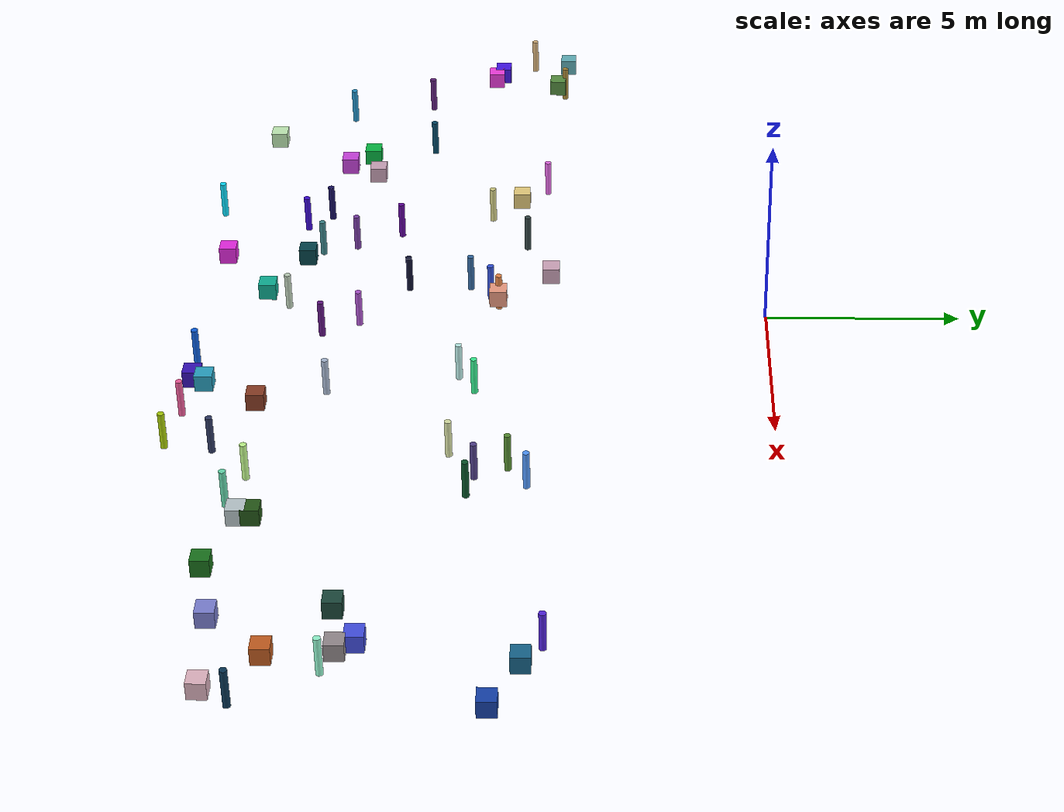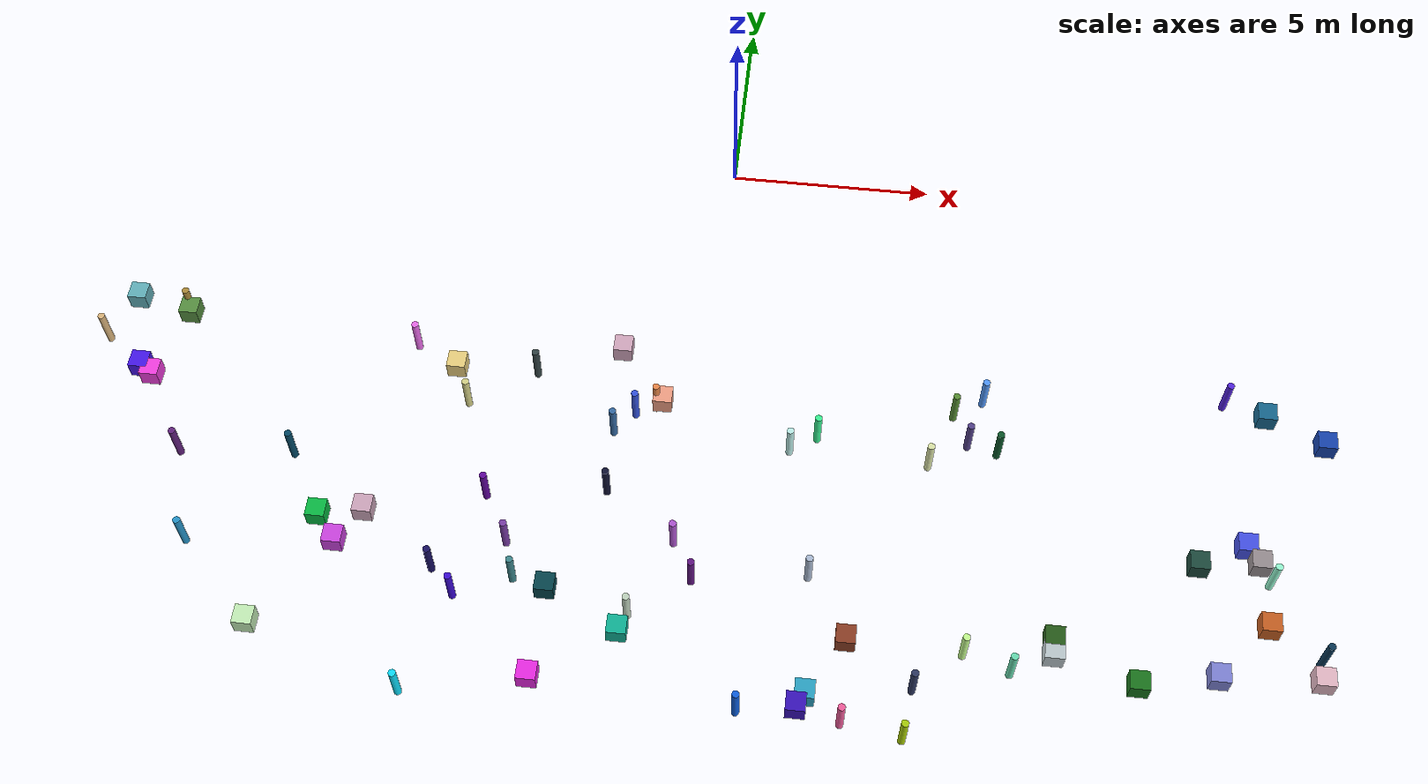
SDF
<sdf version="1.7">
 <world name="warehouse">
  <model name="ground_plane">
   <static>true</static>
   <link name="link">
    <collision name="collision">
     <geometry><plane><normal>0.0 0.0 1</normal><size>1 1</size></plane></geometry>
    </collision>
   </link>
  </model>
  <model name="unit_box_0">
   <static>true</static>
   <pose>13.37 -5.86 0 0 0 0</pose>
   <link name="link">
    <collision name="collision">
     <geometry><box><size>0.450000 0.450000 0.450000</size></box></geometry>
    </collision>
    <visual name="visual">
     <geometry><box><size>0.450000 0.450000 0.450000</size></box></geometry>
     <material>
      <ambient>0.08826428566511146 0.4038599944238248 0.5587865503291078 1</ambient>
      <diffuse>0.08826428566511146 0.4038599944238248 0.5587865503291078 1</diffuse>
      <script><uri>file://media/materials/scripts/gazebo.material</uri><name>Gazebo/RandomColor0</name></script>
     </material>
    </visual>
   </link>
  </model>
  <model name="unit_cylinder_2">
   <static>true</static>
   <pose>5.97 -6.44 0 0 0 0</pose>
   <link name="link">
    <collision name="collision">
     <geometry><cylinder><radius>0.085000</radius><length>1.000000</length></cylinder></geometry>
    </collision>
    <visual name="visual">
     <geometry><cylinder><radius>0.085000</radius><length>1.000000</length></cylinder></geometry>
     <material>
      <ambient>0.3449785465370162 0.561180177442619 0.20164393201053876 1</ambient>
      <diffuse>0.3449785465370162 0.561180177442619 0.20164393201053876 1</diffuse>
      <script><uri>file://media/materials/scripts/gazebo.material</uri><name>Gazebo/RandomColor2</name></script>
     </material>
    </visual>
   </link>
  </model>
  <model name="unit_cylinder_5">
   <static>true</static>
   <pose>-1.19 -6.96 0 0 0 0</pose>
   <link name="link">
    <collision name="collision">
     <geometry><cylinder><radius>0.085000</radius><length>1.000000</length></cylinder></geometry>
    </collision>
    <visual name="visual">
     <geometry><cylinder><radius>0.085000</radius><length>1.000000</length></cylinder></geometry>
     <material>
      <ambient>0.9185062840085724 0.5292186607881189 0.28162312539047907 1</ambient>
      <diffuse>0.9185062840085724 0.5292186607881189 0.28162312539047907 1</diffuse>
      <script><uri>file://media/materials/scripts/gazebo.material</uri><name>Gazebo/RandomColor5</name></script>
     </material>
    </visual>
   </link>
  </model>
  <model name="unit_cylinder_6">
   <static>true</static>
   <pose>-4.87 -9.81 0 0 0 0</pose>
   <link name="link">
    <collision name="collision">
     <geometry><cylinder><radius>0.085000</radius><length>1.000000</length></cylinder></geometry>
    </collision>
    <visual name="visual">
     <geometry><cylinder><radius>0.085000</radius><length>1.000000</length></cylinder></geometry>
     <material>
      <ambient>0.38331743552222297 0.027572329405924578 0.6235658209803379 1</ambient>
      <diffuse>0.38331743552222297 0.027572329405924578 0.6235658209803379 1</diffuse>
      <script><uri>file://media/materials/scripts/gazebo.material</uri><name>Gazebo/RandomColor6</name></script>
     </material>
    </visual>
   </link>
  </model>
  <model name="unit_cylinder_8">
   <static>true</static>
   <pose>-7.27 -5.82 0 0 0 0</pose>
   <link name="link">
    <collision name="collision">
     <geometry><cylinder><radius>0.085000</radius><length>1.000000</length></cylinder></geometry>
    </collision>
    <visual name="visual">
     <geometry><cylinder><radius>0.085000</radius><length>1.000000</length></cylinder></geometry>
     <material>
      <ambient>0.9273169458376869 0.42573511504897754 0.9271410663157754 1</ambient>
      <diffuse>0.9273169458376869 0.42573511504897754 0.9271410663157754 1</diffuse>
      <script><uri>file://media/materials/scripts/gazebo.material</uri><name>Gazebo/RandomColor8</name></script>
     </material>
    </visual>
   </link>
  </model>
  <model name="unit_cylinder_11">
   <static>true</static>
   <pose>5.42 -7.89 0 0 0 0</pose>
   <link name="link">
    <collision name="collision">
     <geometry><cylinder><radius>0.085000</radius><length>1.000000</length></cylinder></geometry>
    </collision>
    <visual name="visual">
     <geometry><cylinder><radius>0.085000</radius><length>1.000000</length></cylinder></geometry>
     <material>
      <ambient>0.8632042588659117 0.8958915272058344 0.6608747969953866 1</ambient>
      <diffuse>0.8632042588659117 0.8958915272058344 0.6608747969953866 1</diffuse>
      <script><uri>file://media/materials/scripts/gazebo.material</uri><name>Gazebo/RandomColor11</name></script>
     </material>
    </visual>
   </link>
  </model>
  <model name="unit_box_13">
   <static>true</static>
   <pose>8.38 -12.26 0 0 0 0</pose>
   <link name="link">
    <collision name="collision">
     <geometry><box><size>0.450000 0.450000 0.450000</size></box></geometry>
    </collision>
    <visual name="visual">
     <geometry><box><size>0.450000 0.450000 0.450000</size></box></geometry>
     <material>
      <ambient>0.1477417695941674 0.3519265693878383 0.09713290157866372 1</ambient>
      <diffuse>0.1477417695941674 0.3519265693878383 0.09713290157866372 1</diffuse>
      <script><uri>file://media/materials/scripts/gazebo.material</uri><name>Gazebo/RandomColor13</name></script>
     </material>
    </visual>
   </link>
  </model>
  <model name="unit_box_14">
   <static>true</static>
   <pose>-8.61 -10.91 0 0 0 0</pose>
   <link name="link">
    <collision name="collision">
     <geometry><box><size>0.450000 0.450000 0.450000</size></box></geometry>
    </collision>
    <visual name="visual">
     <geometry><box><size>0.450000 0.450000 0.450000</size></box></geometry>
     <material>
      <ambient>0.03165804897786417 0.729032787102438 0.2672408092221674 1</ambient>
      <diffuse>0.03165804897786417 0.729032787102438 0.2672408092221674 1</diffuse>
      <script><uri>file://media/materials/scripts/gazebo.material</uri><name>Gazebo/RandomColor14</name></script>
     </material>
    </visual>
   </link>
  </model>
  <model name="unit_cylinder_14">
   <static>true</static>
   <pose>13.32 -10.17 0 0 0 0</pose>
   <link name="link">
    <collision name="collision">
     <geometry><cylinder><radius>0.085000</radius><length>1.000000</length></cylinder></geometry>
    </collision>
    <visual name="visual">
     <geometry><cylinder><radius>0.085000</radius><length>1.000000</length></cylinder></geometry>
     <material>
      <ambient>0.5847449927546251 0.9795083278853924 0.8247499233290505 1</ambient>
      <diffuse>0.5847449927546251 0.9795083278853924 0.8247499233290505 1</diffuse>
      <script><uri>file://media/materials/scripts/gazebo.material</uri><name>Gazebo/RandomColor14</name></script>
     </material>
    </visual>
   </link>
  </model>
  <model name="unit_box_16">
   <static>true</static>
   <pose>-1.03 -6.97 0 0 0 0</pose>
   <link name="link">
    <collision name="collision">
     <geometry><box><size>0.450000 0.450000 0.450000</size></box></geometry>
    </collision>
    <visual name="visual">
     <geometry><box><size>0.450000 0.450000 0.450000</size></box></geometry>
     <material>
      <ambient>0.947777378717247 0.6242593842534916 0.5180780460162824 1</ambient>
      <diffuse>0.947777378717247 0.6242593842534916 0.5180780460162824 1</diffuse>
      <script><uri>file://media/materials/scripts/gazebo.material</uri><name>Gazebo/RandomColor16</name></script>
     </material>
    </visual>
   </link>
  </model>
  <model name="unit_box_18">
   <static>true</static>
   <pose>-8.09 -11.53 0 0 0 0</pose>
   <link name="link">
    <collision name="collision">
     <geometry><box><size>0.450000 0.450000 0.450000</size></box></geometry>
    </collision>
    <visual name="visual">
     <geometry><box><size>0.450000 0.450000 0.450000</size></box></geometry>
     <material>
      <ambient>0.803963229090372 0.2652458061627242 0.8816610414404282 1</ambient>
      <diffuse>0.803963229090372 0.2652458061627242 0.8816610414404282 1</diffuse>
      <script><uri>file://media/materials/scripts/gazebo.material</uri><name>Gazebo/RandomColor18</name></script>
     </material>
    </visual>
   </link>
  </model>
  <model name="unit_cylinder_18">
   <static>true</static>
   <pose>2.74 -7.41 0 0 0 0</pose>
   <link name="link">
    <collision name="collision">
     <geometry><cylinder><radius>0.085000</radius><length>1.000000</length></cylinder></geometry>
    </collision>
    <visual name="visual">
     <geometry><cylinder><radius>0.085000</radius><length>1.000000</length></cylinder></geometry>
     <material>
      <ambient>0.22363109058887753 0.9558468197445318 0.5860861934914426 1</ambient>
      <diffuse>0.22363109058887753 0.9558468197445318 0.5860861934914426 1</diffuse>
      <script><uri>file://media/materials/scripts/gazebo.material</uri><name>Gazebo/RandomColor18</name></script>
     </material>
    </visual>
   </link>
  </model>
  <model name="unit_box_21">
   <static>true</static>
   <pose>8.37 -12.6 0 0 0 0</pose>
   <link name="link">
    <collision name="collision">
     <geometry><box><size>0.450000 0.450000 0.450000</size></box></geometry>
    </collision>
    <visual name="visual">
     <geometry><box><size>0.450000 0.450000 0.450000</size></box></geometry>
     <material>
      <ambient>0.7326866111408485 0.7859811385692107 0.8015302505751346 1</ambient>
      <diffuse>0.7326866111408485 0.7859811385692107 0.8015302505751346 1</diffuse>
      <script><uri>file://media/materials/scripts/gazebo.material</uri><name>Gazebo/RandomColor21</name></script>
     </material>
    </visual>
   </link>
  </model>
  <model name="unit_box_22">
   <static>true</static>
   <pose>-7.57 -10.68 0 0 0 0</pose>
   <link name="link">
    <collision name="collision">
     <geometry><box><size>0.450000 0.450000 0.450000</size></box></geometry>
    </collision>
    <visual name="visual">
     <geometry><box><size>0.450000 0.450000 0.450000</size></box></geometry>
     <material>
      <ambient>0.8056660260705587 0.651666072899554 0.7358513164409488 1</ambient>
      <diffuse>0.8056660260705587 0.651666072899554 0.7358513164409488 1</diffuse>
      <script><uri>file://media/materials/scripts/gazebo.material</uri><name>Gazebo/RandomColor22</name></script>
     </material>
    </visual>
   </link>
  </model>
  <model name="unit_cylinder_22">
   <static>true</static>
   <pose>2.11 -7.83 0 0 0 0</pose>
   <link name="link">
    <collision name="collision">
     <geometry><cylinder><radius>0.085000</radius><length>1.000000</length></cylinder></geometry>
    </collision>
    <visual name="visual">
     <geometry><cylinder><radius>0.085000</radius><length>1.000000</length></cylinder></geometry>
     <material>
      <ambient>0.7419928742520082 0.9435154976415809 0.9250426376935831 1</ambient>
      <diffuse>0.7419928742520082 0.9435154976415809 0.9250426376935831 1</diffuse>
      <script><uri>file://media/materials/scripts/gazebo.material</uri><name>Gazebo/RandomColor22</name></script>
     </material>
    </visual>
   </link>
  </model>
  <model name="unit_box_23">
   <static>true</static>
   <pose>-3.12 -14.37 0 0 0 0</pose>
   <link name="link">
    <collision name="collision">
     <geometry><box><size>0.450000 0.450000 0.450000</size></box></geometry>
    </collision>
    <visual name="visual">
     <geometry><box><size>0.450000 0.450000 0.450000</size></box></geometry>
     <material>
      <ambient>0.918416578895126 0.16488205674642376 0.8958546925203331 1</ambient>
      <diffuse>0.918416578895126 0.16488205674642376 0.8958546925203331 1</diffuse>
      <script><uri>file://media/materials/scripts/gazebo.material</uri><name>Gazebo/RandomColor23</name></script>
     </material>
    </visual>
   </link>
  </model>
  <model name="unit_box_25">
   <static>true</static>
   <pose>-3.07 -12.2 0 0 0 0</pose>
   <link name="link">
    <collision name="collision">
     <geometry><box><size>0.450000 0.450000 0.450000</size></box></geometry>
    </collision>
    <visual name="visual">
     <geometry><box><size>0.450000 0.450000 0.450000</size></box></geometry>
     <material>
      <ambient>0.022567803826378685 0.27193777757583926 0.30225701377346936 1</ambient>
      <diffuse>0.022567803826378685 0.27193777757583926 0.30225701377346936 1</diffuse>
      <script><uri>file://media/materials/scripts/gazebo.material</uri><name>Gazebo/RandomColor25</name></script>
     </material>
    </visual>
   </link>
  </model>
  <model name="unit_box_26">
   <static>true</static>
   <pose>10.22 -13.13 0 0 0 0</pose>
   <link name="link">
    <collision name="collision">
     <geometry><box><size>0.450000 0.450000 0.450000</size></box></geometry>
    </collision>
    <visual name="visual">
     <geometry><box><size>0.450000 0.450000 0.450000</size></box></geometry>
     <material>
      <ambient>0.10199247166240621 0.4547971933936775 0.11272263631989154 1</ambient>
      <diffuse>0.10199247166240621 0.4547971933936775 0.11272263631989154 1</diffuse>
      <script><uri>file://media/materials/scripts/gazebo.material</uri><name>Gazebo/RandomColor26</name></script>
     </material>
    </visual>
   </link>
  </model>
  <model name="unit_cylinder_28">
   <static>true</static>
   <pose>-3.9 -11.89 0 0 0 0</pose>
   <link name="link">
    <collision name="collision">
     <geometry><cylinder><radius>0.085000</radius><length>1.000000</length></cylinder></geometry>
    </collision>
    <visual name="visual">
     <geometry><cylinder><radius>0.085000</radius><length>1.000000</length></cylinder></geometry>
     <material>
      <ambient>0.23714704147335286 0.5277863116868766 0.5501420409379705 1</ambient>
      <diffuse>0.23714704147335286 0.5277863116868766 0.5501420409379705 1</diffuse>
      <script><uri>file://media/materials/scripts/gazebo.material</uri><name>Gazebo/RandomColor28</name></script>
     </material>
    </visual>
   </link>
  </model>
  <model name="unit_box_30">
   <static>true</static>
   <pose>12.74 -9.45 0 0 0 0</pose>
   <link name="link">
    <collision name="collision">
     <geometry><box><size>0.450000 0.450000 0.450000</size></box></geometry>
    </collision>
    <visual name="visual">
     <geometry><box><size>0.450000 0.450000 0.450000</size></box></geometry>
     <material>
      <ambient>0.26588471415708825 0.31432397472669593 0.9022540998881683 1</ambient>
      <diffuse>0.26588471415708825 0.31432397472669593 0.9022540998881683 1</diffuse>
      <script><uri>file://media/materials/scripts/gazebo.material</uri><name>Gazebo/RandomColor30</name></script>
     </material>
    </visual>
   </link>
  </model>
  <model name="unit_cylinder_30">
   <static>true</static>
   <pose>7.04 -7.39 0 0 0 0</pose>
   <link name="link">
    <collision name="collision">
     <geometry><cylinder><radius>0.085000</radius><length>1.000000</length></cylinder></geometry>
    </collision>
    <visual name="visual">
     <geometry><cylinder><radius>0.085000</radius><length>1.000000</length></cylinder></geometry>
     <material>
      <ambient>0.047402585729743874 0.336504398134716 0.1655115016112343 1</ambient>
      <diffuse>0.047402585729743874 0.336504398134716 0.1655115016112343 1</diffuse>
      <script><uri>file://media/materials/scripts/gazebo.material</uri><name>Gazebo/RandomColor30</name></script>
     </material>
    </visual>
   </link>
  </model>
  <model name="unit_cylinder_32">
   <static>true</static>
   <pose>-5.8 -11.84 0 0 0 0</pose>
   <link name="link">
    <collision name="collision">
     <geometry><cylinder><radius>0.085000</radius><length>1.000000</length></cylinder></geometry>
    </collision>
    <visual name="visual">
     <geometry><cylinder><radius>0.085000</radius><length>1.000000</length></cylinder></geometry>
     <material>
      <ambient>0.09204487658594074 0.06168877841563003 0.3847941898904558 1</ambient>
      <diffuse>0.09204487658594074 0.06168877841563003 0.3847941898904558 1</diffuse>
      <script><uri>file://media/materials/scripts/gazebo.material</uri><name>Gazebo/RandomColor32</name></script>
     </material>
    </visual>
   </link>
  </model>
  <model name="unit_cylinder_34">
   <static>true</static>
   <pose>5.16 -14.82 0 0 0 0</pose>
   <link name="link">
    <collision name="collision">
     <geometry><cylinder><radius>0.085000</radius><length>1.000000</length></cylinder></geometry>
    </collision>
    <visual name="visual">
     <geometry><cylinder><radius>0.085000</radius><length>1.000000</length></cylinder></geometry>
     <material>
      <ambient>0.6656105193995572 0.8084766969775248 0.03719706420073787 1</ambient>
      <diffuse>0.6656105193995572 0.8084766969775248 0.03719706420073787 1</diffuse>
      <script><uri>file://media/materials/scripts/gazebo.material</uri><name>Gazebo/RandomColor34</name></script>
     </material>
    </visual>
   </link>
  </model>
  <model name="unit_box_35">
   <static>true</static>
   <pose>-9.61 -13.75 0 0 0 0</pose>
   <link name="link">
    <collision name="collision">
     <geometry><box><size>0.450000 0.450000 0.450000</size></box></geometry>
    </collision>
    <visual name="visual">
     <geometry><box><size>0.450000 0.450000 0.450000</size></box></geometry>
     <material>
      <ambient>0.7708378588864112 0.9372308110168952 0.720540982191358 1</ambient>
      <diffuse>0.7708378588864112 0.9372308110168952 0.720540982191358 1</diffuse>
      <script><uri>file://media/materials/scripts/gazebo.material</uri><name>Gazebo/RandomColor35</name></script>
     </material>
    </visual>
   </link>
  </model>
  <model name="unit_box_36">
   <static>true</static>
   <pose>13.03 -9.85 0 0 0 0</pose>
   <link name="link">
    <collision name="collision">
     <geometry><box><size>0.450000 0.450000 0.450000</size></box></geometry>
    </collision>
    <visual name="visual">
     <geometry><box><size>0.450000 0.450000 0.450000</size></box></geometry>
     <material>
      <ambient>0.5906045360905686 0.552298533158343 0.5652917067054767 1</ambient>
      <diffuse>0.5906045360905686 0.552298533158343 0.5652917067054767 1</diffuse>
      <script><uri>file://media/materials/scripts/gazebo.material</uri><name>Gazebo/RandomColor36</name></script>
     </material>
    </visual>
   </link>
  </model>
  <model name="unit_cylinder_36">
   <static>true</static>
   <pose>-9.63 -9.2 0 0 0 0</pose>
   <link name="link">
    <collision name="collision">
     <geometry><cylinder><radius>0.085000</radius><length>1.000000</length></cylinder></geometry>
    </collision>
    <visual name="visual">
     <geometry><cylinder><radius>0.085000</radius><length>1.000000</length></cylinder></geometry>
     <material>
      <ambient>0.019745083948765618 0.28933366839600627 0.40344467933438666 1</ambient>
      <diffuse>0.019745083948765618 0.28933366839600627 0.40344467933438666 1</diffuse>
      <script><uri>file://media/materials/scripts/gazebo.material</uri><name>Gazebo/RandomColor36</name></script>
     </material>
    </visual>
   </link>
  </model>
  <model name="unit_box_37">
   <static>true</static>
   <pose>-6.13 -6.52 0 0 0 0</pose>
   <link name="link">
    <collision name="collision">
     <geometry><box><size>0.450000 0.450000 0.450000</size></box></geometry>
    </collision>
    <visual name="visual">
     <geometry><box><size>0.450000 0.450000 0.450000</size></box></geometry>
     <material>
      <ambient>0.9161888995338913 0.8150702186937059 0.49685887724763855 1</ambient>
      <diffuse>0.9161888995338913 0.8150702186937059 0.49685887724763855 1</diffuse>
      <script><uri>file://media/materials/scripts/gazebo.material</uri><name>Gazebo/RandomColor37</name></script>
     </material>
    </visual>
   </link>
  </model>
  <model name="unit_cylinder_37">
   <static>true</static>
   <pose>-1.17 -12.52 0 0 0 0</pose>
   <link name="link">
    <collision name="collision">
     <geometry><cylinder><radius>0.085000</radius><length>1.000000</length></cylinder></geometry>
    </collision>
    <visual name="visual">
     <geometry><cylinder><radius>0.085000</radius><length>1.000000</length></cylinder></geometry>
     <material>
      <ambient>0.753500606791812 0.8300947563929503 0.7399797577883998 1</ambient>
      <diffuse>0.753500606791812 0.8300947563929503 0.7399797577883998 1</diffuse>
      <script><uri>file://media/materials/scripts/gazebo.material</uri><name>Gazebo/RandomColor37</name></script>
     </material>
    </visual>
   </link>
  </model>
  <model name="unit_box_42">
   <static>true</static>
   <pose>13.16 -11.41 0 0 0 0</pose>
   <link name="link">
    <collision name="collision">
     <geometry><box><size>0.450000 0.450000 0.450000</size></box></geometry>
    </collision>
    <visual name="visual">
     <geometry><box><size>0.450000 0.450000 0.450000</size></box></geometry>
     <material>
      <ambient>0.7733834027419304 0.3703396112034828 0.13109386188199523 1</ambient>
      <diffuse>0.7733834027419304 0.3703396112034828 0.13109386188199523 1</diffuse>
      <script><uri>file://media/materials/scripts/gazebo.material</uri><name>Gazebo/RandomColor42</name></script>
     </material>
    </visual>
   </link>
  </model>
  <model name="unit_box_43">
   <static>true</static>
   <pose>-13.81 -7.36 0 0 0 0</pose>
   <link name="link">
    <collision name="collision">
     <geometry><box><size>0.450000 0.450000 0.450000</size></box></geometry>
    </collision>
    <visual name="visual">
     <geometry><box><size>0.450000 0.450000 0.450000</size></box></geometry>
     <material>
      <ambient>0.2762088920935766 0.08728119381403432 0.9243574215584481 1</ambient>
      <diffuse>0.2762088920935766 0.08728119381403432 0.9243574215584481 1</diffuse>
      <script><uri>file://media/materials/scripts/gazebo.material</uri><name>Gazebo/RandomColor43</name></script>
     </material>
    </visual>
   </link>
  </model>
  <model name="unit_cylinder_44">
   <static>true</static>
   <pose>-5.2 -12.45 0 0 0 0</pose>
   <link name="link">
    <collision name="collision">
     <geometry><cylinder><radius>0.085000</radius><length>1.000000</length></cylinder></geometry>
    </collision>
    <visual name="visual">
     <geometry><cylinder><radius>0.085000</radius><length>1.000000</length></cylinder></geometry>
     <material>
      <ambient>0.23875326155873622 0.042954959674262994 0.8389854229777811 1</ambient>
      <diffuse>0.23875326155873622 0.042954959674262994 0.8389854229777811 1</diffuse>
      <script><uri>file://media/materials/scripts/gazebo.material</uri><name>Gazebo/RandomColor44</name></script>
     </material>
    </visual>
   </link>
  </model>
  <model name="unit_cylinder_46">
   <static>true</static>
   <pose>-14.96 -6.42 0 0 0 0</pose>
   <link name="link">
    <collision name="collision">
     <geometry><cylinder><radius>0.085000</radius><length>1.000000</length></cylinder></geometry>
    </collision>
    <visual name="visual">
     <geometry><cylinder><radius>0.085000</radius><length>1.000000</length></cylinder></geometry>
     <material>
      <ambient>0.8658349564695275 0.7144690256982987 0.4943297017718514 1</ambient>
      <diffuse>0.8658349564695275 0.7144690256982987 0.4943297017718514 1</diffuse>
      <script><uri>file://media/materials/scripts/gazebo.material</uri><name>Gazebo/RandomColor46</name></script>
     </material>
    </visual>
   </link>
  </model>
  <model name="unit_box_51">
   <static>true</static>
   <pose>-1.31 -13.07 0 0 0 0</pose>
   <link name="link">
    <collision name="collision">
     <geometry><box><size>0.450000 0.450000 0.450000</size></box></geometry>
    </collision>
    <visual name="visual">
     <geometry><box><size>0.450000 0.450000 0.450000</size></box></geometry>
     <material>
      <ambient>0.05830722303989544 0.6983179361884732 0.5903009048953685 1</ambient>
      <diffuse>0.05830722303989544 0.6983179361884732 0.5903009048953685 1</diffuse>
      <script><uri>file://media/materials/scripts/gazebo.material</uri><name>Gazebo/RandomColor51</name></script>
     </material>
    </visual>
   </link>
  </model>
  <model name="unit_cylinder_51">
   <static>true</static>
   <pose>-11.61 -11.74 0 0 0 0</pose>
   <link name="link">
    <collision name="collision">
     <geometry><cylinder><radius>0.085000</radius><length>1.000000</length></cylinder></geometry>
    </collision>
    <visual name="visual">
     <geometry><cylinder><radius>0.085000</radius><length>1.000000</length></cylinder></geometry>
     <material>
      <ambient>0.14258647664746926 0.5805440021742392 0.7885531435737853 1</ambient>
      <diffuse>0.14258647664746926 0.5805440021742392 0.7885531435737853 1</diffuse>
      <script><uri>file://media/materials/scripts/gazebo.material</uri><name>Gazebo/RandomColor51</name></script>
     </material>
    </visual>
   </link>
  </model>
  <model name="unit_box_52">
   <static>true</static>
   <pose>2.8 -14.45 0 0 0 0</pose>
   <link name="link">
    <collision name="collision">
     <geometry><box><size>0.450000 0.450000 0.450000</size></box></geometry>
    </collision>
    <visual name="visual">
     <geometry><box><size>0.450000 0.450000 0.450000</size></box></geometry>
     <material>
      <ambient>0.21970660548753873 0.07289962423127394 0.7327702143360866 1</ambient>
      <diffuse>0.21970660548753873 0.07289962423127394 0.7327702143360866 1</diffuse>
      <script><uri>file://media/materials/scripts/gazebo.material</uri><name>Gazebo/RandomColor52</name></script>
     </material>
    </visual>
   </link>
  </model>
  <model name="unit_cylinder_55">
   <static>true</static>
   <pose>3.79 -14.6 0 0 0 0</pose>
   <link name="link">
    <collision name="collision">
     <geometry><cylinder><radius>0.085000</radius><length>1.000000</length></cylinder></geometry>
    </collision>
    <visual name="visual">
     <geometry><cylinder><radius>0.085000</radius><length>1.000000</length></cylinder></geometry>
     <material>
      <ambient>0.9437258335240843 0.36163621201507834 0.6111598688144195 1</ambient>
      <diffuse>0.9437258335240843 0.36163621201507834 0.6111598688144195 1</diffuse>
      <script><uri>file://media/materials/scripts/gazebo.material</uri><name>Gazebo/RandomColor55</name></script>
     </material>
    </visual>
   </link>
  </model>
  <model name="unit_box_56">
   <static>true</static>
   <pose>14.74 -6.51 0 0 0 0</pose>
   <link name="link">
    <collision name="collision">
     <geometry><box><size>0.450000 0.450000 0.450000</size></box></geometry>
    </collision>
    <visual name="visual">
     <geometry><box><size>0.450000 0.450000 0.450000</size></box></geometry>
     <material>
      <ambient>0.08762498221006398 0.26371076170088525 0.6816974429773698 1</ambient>
      <diffuse>0.08762498221006398 0.26371076170088525 0.6816974429773698 1</diffuse>
      <script><uri>file://media/materials/scripts/gazebo.material</uri><name>Gazebo/RandomColor56</name></script>
     </material>
    </visual>
   </link>
  </model>
  <model name="unit_cylinder_57">
   <static>true</static>
   <pose>-2.07 -9.39 0 0 0 0</pose>
   <link name="link">
    <collision name="collision">
     <geometry><cylinder><radius>0.085000</radius><length>1.000000</length></cylinder></geometry>
    </collision>
    <visual name="visual">
     <geometry><cylinder><radius>0.085000</radius><length>1.000000</length></cylinder></geometry>
     <material>
      <ambient>0.06226589138655647 0.07119241921738373 0.2017847492891005 1</ambient>
      <diffuse>0.06226589138655647 0.07119241921738373 0.2017847492891005 1</diffuse>
      <script><uri>file://media/materials/scripts/gazebo.material</uri><name>Gazebo/RandomColor57</name></script>
     </material>
    </visual>
   </link>
  </model>
  <model name="unit_cylinder_58">
   <static>true</static>
   <pose>12.46 -5.42 0 0 0 0</pose>
   <link name="link">
    <collision name="collision">
     <geometry><cylinder><radius>0.085000</radius><length>1.000000</length></cylinder></geometry>
    </collision>
    <visual name="visual">
     <geometry><cylinder><radius>0.085000</radius><length>1.000000</length></cylinder></geometry>
     <material>
      <ambient>0.3290876200983125 0.14338488519357728 0.8744615760036887 1</ambient>
      <diffuse>0.3290876200983125 0.14338488519357728 0.8744615760036887 1</diffuse>
      <script><uri>file://media/materials/scripts/gazebo.material</uri><name>Gazebo/RandomColor58</name></script>
     </material>
    </visual>
   </link>
  </model>
  <model name="unit_cylinder_60">
   <static>true</static>
   <pose>0.17 -11.51 0 0 0 0</pose>
   <link name="link">
    <collision name="collision">
     <geometry><cylinder><radius>0.085000</radius><length>1.000000</length></cylinder></geometry>
    </collision>
    <visual name="visual">
     <geometry><cylinder><radius>0.085000</radius><length>1.000000</length></cylinder></geometry>
     <material>
      <ambient>0.38280222767385397 0.08618427359723047 0.5176991375302088 1</ambient>
      <diffuse>0.38280222767385397 0.08618427359723047 0.5176991375302088 1</diffuse>
      <script><uri>file://media/materials/scripts/gazebo.material</uri><name>Gazebo/RandomColor60</name></script>
     </material>
    </visual>
   </link>
  </model>
  <model name="unit_box_64">
   <static>true</static>
   <pose>2.97 -14.13 0 0 0 0</pose>
   <link name="link">
    <collision name="collision">
     <geometry><box><size>0.450000 0.450000 0.450000</size></box></geometry>
    </collision>
    <visual name="visual">
     <geometry><box><size>0.450000 0.450000 0.450000</size></box></geometry>
     <material>
      <ambient>0.16604699909075726 0.6419633106423409 0.7683506537892684 1</ambient>
      <diffuse>0.16604699909075726 0.6419633106423409 0.7683506537892684 1</diffuse>
      <script><uri>file://media/materials/scripts/gazebo.material</uri><name>Gazebo/RandomColor64</name></script>
     </material>
    </visual>
   </link>
  </model>
  <model name="unit_cylinder_64">
   <static>true</static>
   <pose>-13.11 -5.45 0 0 0 0</pose>
   <link name="link">
    <collision name="collision">
     <geometry><cylinder><radius>0.085000</radius><length>1.000000</length></cylinder></geometry>
    </collision>
    <visual name="visual">
     <geometry><cylinder><radius>0.085000</radius><length>1.000000</length></cylinder></geometry>
     <material>
      <ambient>0.6758310281757489 0.5436950072183305 0.22303976481887178 1</ambient>
      <diffuse>0.6758310281757489 0.5436950072183305 0.22303976481887178 1</diffuse>
      <script><uri>file://media/materials/scripts/gazebo.material</uri><name>Gazebo/RandomColor64</name></script>
     </material>
    </visual>
   </link>
  </model>
  <model name="unit_box_65">
   <static>true</static>
   <pose>-2.17 -5.61 0 0 0 0</pose>
   <link name="link">
    <collision name="collision">
     <geometry><box><size>0.450000 0.450000 0.450000</size></box></geometry>
    </collision>
    <visual name="visual">
     <geometry><box><size>0.450000 0.450000 0.450000</size></box></geometry>
     <material>
      <ambient>0.8250611679811523 0.6572489556331688 0.7449291343714697 1</ambient>
      <diffuse>0.8250611679811523 0.6572489556331688 0.7449291343714697 1</diffuse>
      <script><uri>file://media/materials/scripts/gazebo.material</uri><name>Gazebo/RandomColor65</name></script>
     </material>
    </visual>
   </link>
  </model>
  <model name="unit_box_66">
   <static>true</static>
   <pose>-14.39 -5.37 0 0 0 0</pose>
   <link name="link">
    <collision name="collision">
     <geometry><box><size>0.450000 0.450000 0.450000</size></box></geometry>
    </collision>
    <visual name="visual">
     <geometry><box><size>0.450000 0.450000 0.450000</size></box></geometry>
     <material>
      <ambient>0.3856459680233507 0.6981164825646198 0.7350846922080011 1</ambient>
      <diffuse>0.3856459680233507 0.6981164825646198 0.7350846922080011 1</diffuse>
      <script><uri>file://media/materials/scripts/gazebo.material</uri><name>Gazebo/RandomColor66</name></script>
     </material>
    </visual>
   </link>
  </model>
  <model name="unit_cylinder_66">
   <static>true</static>
   <pose>6.33 -7.23 0 0 0 0</pose>
   <link name="link">
    <collision name="collision">
     <geometry><cylinder><radius>0.085000</radius><length>1.000000</length></cylinder></geometry>
    </collision>
    <visual name="visual">
     <geometry><cylinder><radius>0.085000</radius><length>1.000000</length></cylinder></geometry>
     <material>
      <ambient>0.32630468826452474 0.25625794075968 0.5435423512109011 1</ambient>
      <diffuse>0.32630468826452474 0.25625794075968 0.5435423512109011 1</diffuse>
      <script><uri>file://media/materials/scripts/gazebo.material</uri><name>Gazebo/RandomColor66</name></script>
     </material>
    </visual>
   </link>
  </model>
  <model name="unit_cylinder_67">
   <static>true</static>
   <pose>6.4 -12.67 0 0 0 0</pose>
   <link name="link">
    <collision name="collision">
     <geometry><cylinder><radius>0.085000</radius><length>1.000000</length></cylinder></geometry>
    </collision>
    <visual name="visual">
     <geometry><cylinder><radius>0.085000</radius><length>1.000000</length></cylinder></geometry>
     <material>
      <ambient>0.774624427133132 0.9985492889729521 0.5647500725707519 1</ambient>
      <diffuse>0.774624427133132 0.9985492889729521 0.5647500725707519 1</diffuse>
      <script><uri>file://media/materials/scripts/gazebo.material</uri><name>Gazebo/RandomColor67</name></script>
     </material>
    </visual>
   </link>
  </model>
  <model name="unit_cylinder_68">
   <static>true</static>
   <pose>-5.75 -7.32 0 0 0 0</pose>
   <link name="link">
    <collision name="collision">
     <geometry><cylinder><radius>0.085000</radius><length>1.000000</length></cylinder></geometry>
    </collision>
    <visual name="visual">
     <geometry><cylinder><radius>0.085000</radius><length>1.000000</length></cylinder></geometry>
     <material>
      <ambient>0.8407464633192466 0.8251472081139455 0.5356898941647494 1</ambient>
      <diffuse>0.8407464633192466 0.8251472081139455 0.5356898941647494 1</diffuse>
      <script><uri>file://media/materials/scripts/gazebo.material</uri><name>Gazebo/RandomColor68</name></script>
     </material>
    </visual>
   </link>
  </model>
  <model name="unit_cylinder_69">
   <static>true</static>
   <pose>7.46 -13.01 0 0 0 0</pose>
   <link name="link">
    <collision name="collision">
     <geometry><cylinder><radius>0.085000</radius><length>1.000000</length></cylinder></geometry>
    </collision>
    <visual name="visual">
     <geometry><cylinder><radius>0.085000</radius><length>1.000000</length></cylinder></geometry>
     <material>
      <ambient>0.40281880156514616 0.8619949867744566 0.6898716171694578 1</ambient>
      <diffuse>0.40281880156514616 0.8619949867744566 0.6898716171694578 1</diffuse>
      <script><uri>file://media/materials/scripts/gazebo.material</uri><name>Gazebo/RandomColor69</name></script>
     </material>
    </visual>
   </link>
  </model>
  <model name="unit_box_73">
   <static>true</static>
   <pose>11.63 -10.03 0 0 0 0</pose>
   <link name="link">
    <collision name="collision">
     <geometry><box><size>0.450000 0.450000 0.450000</size></box></geometry>
    </collision>
    <visual name="visual">
     <geometry><box><size>0.450000 0.450000 0.450000</size></box></geometry>
     <material>
      <ambient>0.11187455633061516 0.2861965681555252 0.23530893178777557 1</ambient>
      <diffuse>0.11187455633061516 0.2861965681555252 0.23530893178777557 1</diffuse>
      <script><uri>file://media/materials/scripts/gazebo.material</uri><name>Gazebo/RandomColor73</name></script>
     </material>
    </visual>
   </link>
  </model>
  <model name="unit_cylinder_73">
   <static>true</static>
   <pose>-12.36 -9.43 0 0 0 0</pose>
   <link name="link">
    <collision name="collision">
     <geometry><cylinder><radius>0.085000</radius><length>1.000000</length></cylinder></geometry>
    </collision>
    <visual name="visual">
     <geometry><cylinder><radius>0.085000</radius><length>1.000000</length></cylinder></geometry>
     <material>
      <ambient>0.3791468587779585 0.13330889340130203 0.4903161013376919 1</ambient>
      <diffuse>0.3791468587779585 0.13330889340130203 0.4903161013376919 1</diffuse>
      <script><uri>file://media/materials/scripts/gazebo.material</uri><name>Gazebo/RandomColor73</name></script>
     </material>
    </visual>
   </link>
  </model>
  <model name="unit_cylinder_75">
   <static>true</static>
   <pose>1.5 -14.56 0 0 0 0</pose>
   <link name="link">
    <collision name="collision">
     <geometry><cylinder><radius>0.085000</radius><length>1.000000</length></cylinder></geometry>
    </collision>
    <visual name="visual">
     <geometry><cylinder><radius>0.085000</radius><length>1.000000</length></cylinder></geometry>
     <material>
      <ambient>0.05716417769558979 0.3820912105480768 0.8806179998442646 1</ambient>
      <diffuse>0.05716417769558979 0.3820912105480768 0.8806179998442646 1</diffuse>
      <script><uri>file://media/materials/scripts/gazebo.material</uri><name>Gazebo/RandomColor75</name></script>
     </material>
    </visual>
   </link>
  </model>
  <model name="unit_cylinder_76">
   <static>true</static>
   <pose>-0.35 -10.58 0 0 0 0</pose>
   <link name="link">
    <collision name="collision">
     <geometry><cylinder><radius>0.085000</radius><length>1.000000</length></cylinder></geometry>
    </collision>
    <visual name="visual">
     <geometry><cylinder><radius>0.085000</radius><length>1.000000</length></cylinder></geometry>
     <material>
      <ambient>0.6887682516108722 0.3353151614565232 0.8207120150139005 1</ambient>
      <diffuse>0.6887682516108722 0.3353151614565232 0.8207120150139005 1</diffuse>
      <script><uri>file://media/materials/scripts/gazebo.material</uri><name>Gazebo/RandomColor76</name></script>
     </material>
    </visual>
   </link>
  </model>
  <model name="unit_cylinder_79">
   <static>true</static>
   <pose>-4.2 -10.99 0 0 0 0</pose>
   <link name="link">
    <collision name="collision">
     <geometry><cylinder><radius>0.085000</radius><length>1.000000</length></cylinder></geometry>
    </collision>
    <visual name="visual">
     <geometry><cylinder><radius>0.085000</radius><length>1.000000</length></cylinder></geometry>
     <material>
      <ambient>0.4775826786740217 0.24094589647464404 0.6527955034229855 1</ambient>
      <diffuse>0.4775826786740217 0.24094589647464404 0.6527955034229855 1</diffuse>
      <script><uri>file://media/materials/scripts/gazebo.material</uri><name>Gazebo/RandomColor79</name></script>
     </material>
    </visual>
   </link>
  </model>
  <model name="unit_box_84">
   <static>true</static>
   <pose>11.98 -12.76 0 0 0 0</pose>
   <link name="link">
    <collision name="collision">
     <geometry><box><size>0.450000 0.450000 0.450000</size></box></geometry>
    </collision>
    <visual name="visual">
     <geometry><box><size>0.450000 0.450000 0.450000</size></box></geometry>
     <material>
      <ambient>0.4906256483058997 0.5088877812076412 0.8369448920755507 1</ambient>
      <diffuse>0.4906256483058997 0.5088877812076412 0.8369448920755507 1</diffuse>
      <script><uri>file://media/materials/scripts/gazebo.material</uri><name>Gazebo/RandomColor84</name></script>
     </material>
    </visual>
   </link>
  </model>
  <model name="unit_cylinder_84">
   <static>true</static>
   <pose>6.66 -5.97 0 0 0 0</pose>
   <link name="link">
    <collision name="collision">
     <geometry><cylinder><radius>0.085000</radius><length>1.000000</length></cylinder></geometry>
    </collision>
    <visual name="visual">
     <geometry><cylinder><radius>0.085000</radius><length>1.000000</length></cylinder></geometry>
     <material>
      <ambient>0.3222999640005353 0.6035375797928689 0.9927871207528789 1</ambient>
      <diffuse>0.3222999640005353 0.6035375797928689 0.9927871207528789 1</diffuse>
      <script><uri>file://media/materials/scripts/gazebo.material</uri><name>Gazebo/RandomColor84</name></script>
     </material>
    </visual>
   </link>
  </model>
  <model name="unit_cylinder_86">
   <static>true</static>
   <pose>2.82 -11.12 0 0 0 0</pose>
   <link name="link">
    <collision name="collision">
     <geometry><cylinder><radius>0.085000</radius><length>1.000000</length></cylinder></geometry>
    </collision>
    <visual name="visual">
     <geometry><cylinder><radius>0.085000</radius><length>1.000000</length></cylinder></geometry>
     <material>
      <ambient>0.6660726291891621 0.730822030054762 0.8330938376190852 1</ambient>
      <diffuse>0.6660726291891621 0.730822030054762 0.8330938376190852 1</diffuse>
      <script><uri>file://media/materials/scripts/gazebo.material</uri><name>Gazebo/RandomColor86</name></script>
     </material>
    </visual>
   </link>
  </model>
  <model name="unit_box_88">
   <static>true</static>
   <pose>3.77 -12.74 0 0 0 0</pose>
   <link name="link">
    <collision name="collision">
     <geometry><box><size>0.450000 0.450000 0.450000</size></box></geometry>
    </collision>
    <visual name="visual">
     <geometry><box><size>0.450000 0.450000 0.450000</size></box></geometry>
     <material>
      <ambient>0.5470070761024585 0.24278544612819053 0.14686726551589557 1</ambient>
      <diffuse>0.5470070761024585 0.24278544612819053 0.14686726551589557 1</diffuse>
      <script><uri>file://media/materials/scripts/gazebo.material</uri><name>Gazebo/RandomColor88</name></script>
     </material>
    </visual>
   </link>
  </model>
  <model name="unit_cylinder_88">
   <static>true</static>
   <pose>-2.13 -7.75 0 0 0 0</pose>
   <link name="link">
    <collision name="collision">
     <geometry><cylinder><radius>0.085000</radius><length>1.000000</length></cylinder></geometry>
    </collision>
    <visual name="visual">
     <geometry><cylinder><radius>0.085000</radius><length>1.000000</length></cylinder></geometry>
     <material>
      <ambient>0.20750573385387328 0.41910764443167314 0.6432934285597746 1</ambient>
      <diffuse>0.20750573385387328 0.41910764443167314 0.6432934285597746 1</diffuse>
      <script><uri>file://media/materials/scripts/gazebo.material</uri><name>Gazebo/RandomColor88</name></script>
     </material>
    </visual>
   </link>
  </model>
  <model name="unit_box_90">
   <static>true</static>
   <pose>14.26 -12.6 0 0 0 0</pose>
   <link name="link">
    <collision name="collision">
     <geometry><box><size>0.450000 0.450000 0.450000</size></box></geometry>
    </collision>
    <visual name="visual">
     <geometry><box><size>0.450000 0.450000 0.450000</size></box></geometry>
     <material>
      <ambient>0.8915550607512142 0.7170865050775146 0.7694908379389855 1</ambient>
      <diffuse>0.8915550607512142 0.7170865050775146 0.7694908379389855 1</diffuse>
      <script><uri>file://media/materials/scripts/gazebo.material</uri><name>Gazebo/RandomColor90</name></script>
     </material>
    </visual>
   </link>
  </model>
  <model name="unit_cylinder_91">
   <static>true</static>
   <pose>-1.67 -7.2 0 0 0 0</pose>
   <link name="link">
    <collision name="collision">
     <geometry><cylinder><radius>0.085000</radius><length>1.000000</length></cylinder></geometry>
    </collision>
    <visual name="visual">
     <geometry><cylinder><radius>0.085000</radius><length>1.000000</length></cylinder></geometry>
     <material>
      <ambient>0.20516881126555875 0.32897919434564293 0.8744919012410054 1</ambient>
      <diffuse>0.20516881126555875 0.32897919434564293 0.8744919012410054 1</diffuse>
      <script><uri>file://media/materials/scripts/gazebo.material</uri><name>Gazebo/RandomColor91</name></script>
     </material>
    </visual>
   </link>
  </model>
  <model name="unit_cylinder_92">
   <static>true</static>
   <pose>-4.21 -6.3 0 0 0 0</pose>
   <link name="link">
    <collision name="collision">
     <geometry><cylinder><radius>0.085000</radius><length>1.000000</length></cylinder></geometry>
    </collision>
    <visual name="visual">
     <geometry><cylinder><radius>0.085000</radius><length>1.000000</length></cylinder></geometry>
     <material>
      <ambient>0.20484029363854905 0.2696745466032632 0.2734033750186343 1</ambient>
      <diffuse>0.20484029363854905 0.2696745466032632 0.2734033750186343 1</diffuse>
      <script><uri>file://media/materials/scripts/gazebo.material</uri><name>Gazebo/RandomColor92</name></script>
     </material>
    </visual>
   </link>
  </model>
  <model name="unit_box_94">
   <static>true</static>
   <pose>-13.49 -7.55 0 0 0 0</pose>
   <link name="link">
    <collision name="collision">
     <geometry><box><size>0.450000 0.450000 0.450000</size></box></geometry>
    </collision>
    <visual name="visual">
     <geometry><box><size>0.450000 0.450000 0.450000</size></box></geometry>
     <material>
      <ambient>0.9598894489833962 0.2483900541936216 0.8917324772073927 1</ambient>
      <diffuse>0.9598894489833962 0.2483900541936216 0.8917324772073927 1</diffuse>
      <script><uri>file://media/materials/scripts/gazebo.material</uri><name>Gazebo/RandomColor94</name></script>
     </material>
    </visual>
   </link>
  </model>
  <model name="unit_cylinder_94">
   <static>true</static>
   <pose>-5.96 -14.89 0 0 0 0</pose>
   <link name="link">
    <collision name="collision">
     <geometry><cylinder><radius>0.085000</radius><length>1.000000</length></cylinder></geometry>
    </collision>
    <visual name="visual">
     <geometry><cylinder><radius>0.085000</radius><length>1.000000</length></cylinder></geometry>
     <material>
      <ambient>0.05093220353344807 0.8758603046988542 0.9885584407100597 1</ambient>
      <diffuse>0.05093220353344807 0.8758603046988542 0.9885584407100597 1</diffuse>
      <script><uri>file://media/materials/scripts/gazebo.material</uri><name>Gazebo/RandomColor94</name></script>
     </material>
    </visual>
   </link>
  </model>
  <model name="unit_cylinder_95">
   <static>true</static>
   <pose>5.32 -13.64 0 0 0 0</pose>
   <link name="link">
    <collision name="collision">
     <geometry><cylinder><radius>0.085000</radius><length>1.000000</length></cylinder></geometry>
    </collision>
    <visual name="visual">
     <geometry><cylinder><radius>0.085000</radius><length>1.000000</length></cylinder></geometry>
     <material>
      <ambient>0.1825297020337322 0.22351703618197416 0.38651598298552525 1</ambient>
      <diffuse>0.1825297020337322 0.22351703618197416 0.38651598298552525 1</diffuse>
      <script><uri>file://media/materials/scripts/gazebo.material</uri><name>Gazebo/RandomColor95</name></script>
     </material>
    </visual>
   </link>
  </model>
  <model name="unit_box_98">
   <static>true</static>
   <pose>-13.01 -5.67 0 0 0 0</pose>
   <link name="link">
    <collision name="collision">
     <geometry><box><size>0.450000 0.450000 0.450000</size></box></geometry>
    </collision>
    <visual name="visual">
     <geometry><box><size>0.450000 0.450000 0.450000</size></box></geometry>
     <material>
      <ambient>0.34239681586706194 0.5684278716969653 0.25800141958479983 1</ambient>
      <diffuse>0.34239681586706194 0.5684278716969653 0.25800141958479983 1</diffuse>
      <script><uri>file://media/materials/scripts/gazebo.material</uri><name>Gazebo/RandomColor98</name></script>
     </material>
    </visual>
   </link>
  </model>
  <model name="unit_cylinder_98">
   <static>true</static>
   <pose>14.35 -12.01 0 0 0 0</pose>
   <link name="link">
    <collision name="collision">
     <geometry><cylinder><radius>0.085000</radius><length>1.000000</length></cylinder></geometry>
    </collision>
    <visual name="visual">
     <geometry><cylinder><radius>0.085000</radius><length>1.000000</length></cylinder></geometry>
     <material>
      <ambient>0.03903266059605082 0.2146896843983267 0.33254412122046206 1</ambient>
      <diffuse>0.03903266059605082 0.2146896843983267 0.33254412122046206 1</diffuse>
      <script><uri>file://media/materials/scripts/gazebo.material</uri><name>Gazebo/RandomColor98</name></script>
     </material>
    </visual>
   </link>
  </model>
 </world>
</sdf>
